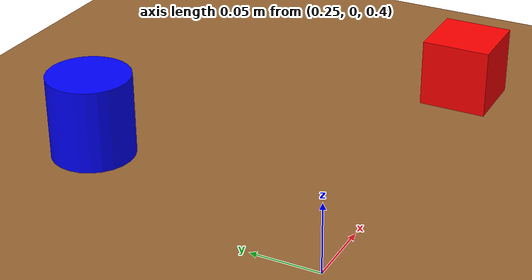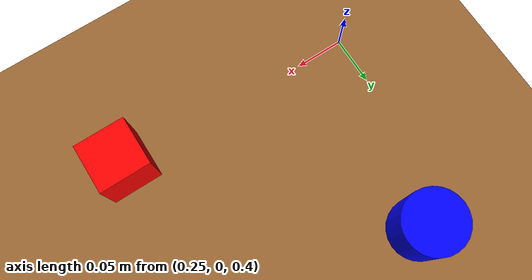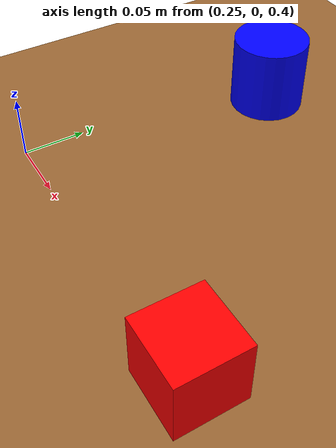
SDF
<?xml version="1.0"?>
<sdf version="1.9">
  <world name="m6_test_world">
    <!--
      M6 Simulation E2E Test World
      Contains: ground plane, table, red cube, blue cylinder
      Objects have PosePublisher plugin for ground truth pose extraction.
    -->

    <!-- System plugins -->
    <plugin filename="gz-sim-physics-system" name="gz::sim::systems::Physics">
      <engine>ode</engine>
    </plugin>
    <plugin filename="gz-sim-user-commands-system" name="gz::sim::systems::UserCommands"/>
    <plugin filename="gz-sim-scene-broadcaster-system" name="gz::sim::systems::SceneBroadcaster">
      <publish_world_info>true</publish_world_info>
    </plugin>
    <plugin filename="gz-sim-sensors-system" name="gz::sim::systems::Sensors">
      <render_engine>ogre2</render_engine>
    </plugin>

    <gravity>0 0 -9.8</gravity>

    <!-- Lighting -->
    <light type="directional" name="sun">
      <cast_shadows>true</cast_shadows>
      <pose>0 0 10 0 0 0</pose>
      <diffuse>0.8 0.8 0.8 1</diffuse>
      <specular>0.2 0.2 0.2 1</specular>
      <attenuation>
        <range>1000</range>
        <constant>0.9</constant>
        <linear>0.01</linear>
        <quadratic>0.001</quadratic>
      </attenuation>
      <direction>-0.5 0.5 -1</direction>
    </light>

    <!-- Ground plane -->
    <model name="ground_plane">
      <static>true</static>
      <link name="link">
        <visual name="visual">
          <geometry>
            <plane>
              <normal>0 0 1</normal>
              <size>10 10</size>
            </plane>
          </geometry>
          <material>
            <ambient>0.8 0.8 0.8 1</ambient>
            <diffuse>0.8 0.8 0.8 1</diffuse>
          </material>
        </visual>
        <collision name="collision">
          <geometry>
            <plane>
              <normal>0 0 1</normal>
            </plane>
          </geometry>
        </collision>
      </link>
    </model>

    <!-- Table (static, in front of arm1) -->
    <model name="table">
      <static>true</static>
      <pose>0.5 0 0.4 0 0 0</pose>
      <link name="link">
        <visual name="visual">
          <geometry>
            <box>
              <size>0.8 1.0 0.02</size>
            </box>
          </geometry>
          <material>
            <ambient>0.6 0.4 0.2 1</ambient>
            <diffuse>0.6 0.4 0.2 1</diffuse>
          </material>
        </visual>
        <collision name="collision">
          <geometry>
            <box>
              <size>0.8 1.0 0.02</size>
            </box>
          </geometry>
        </collision>
      </link>
    </model>

    <!-- Red cube on table (dynamic, with PosePublisher) -->
    <model name="red_cube">
      <pose>0.5 0 0.435 0 0 0</pose>
      <link name="link">
        <visual name="visual">
          <geometry>
            <box>
              <size>0.05 0.05 0.05</size>
            </box>
          </geometry>
          <material>
            <ambient>1 0 0 1</ambient>
            <diffuse>1 0 0 1</diffuse>
          </material>
        </visual>
        <collision name="collision">
          <geometry>
            <box>
              <size>0.05 0.05 0.05</size>
            </box>
          </geometry>
        </collision>
        <inertial>
          <mass>0.1</mass>
          <inertia>
            <ixx>0.0000417</ixx>
            <ixy>0</ixy>
            <ixz>0</ixz>
            <iyy>0.0000417</iyy>
            <iyz>0</iyz>
            <izz>0.0000417</izz>
          </inertia>
        </inertial>
      </link>
      <plugin filename="gz-sim-pose-publisher-system" name="gz::sim::systems::PosePublisher">
        <publish_model_pose>true</publish_model_pose>
        <publish_link_pose>false</publish_link_pose>
        <publish_frequency>10</publish_frequency>
      </plugin>
    </model>

    <!-- Blue cylinder on table (dynamic, with PosePublisher) -->
    <model name="blue_cylinder">
      <pose>0.3 0.2 0.44 0 0 0</pose>
      <link name="link">
        <visual name="visual">
          <geometry>
            <cylinder>
              <radius>0.03</radius>
              <length>0.06</length>
            </cylinder>
          </geometry>
          <material>
            <ambient>0 0 1 1</ambient>
            <diffuse>0 0 1 1</diffuse>
          </material>
        </visual>
        <collision name="collision">
          <geometry>
            <cylinder>
              <radius>0.03</radius>
              <length>0.06</length>
            </cylinder>
          </geometry>
        </collision>
        <inertial>
          <mass>0.1</mass>
          <inertia>
            <ixx>0.00005</ixx>
            <ixy>0</ixy>
            <ixz>0</ixz>
            <iyy>0.00005</iyy>
            <iyz>0</iyz>
            <izz>0.000045</izz>
          </inertia>
        </inertial>
      </link>
      <plugin filename="gz-sim-pose-publisher-system" name="gz::sim::systems::PosePublisher">
        <publish_model_pose>true</publish_model_pose>
        <publish_link_pose>false</publish_link_pose>
        <publish_frequency>10</publish_frequency>
      </plugin>
    </model>

  </world>
</sdf>
